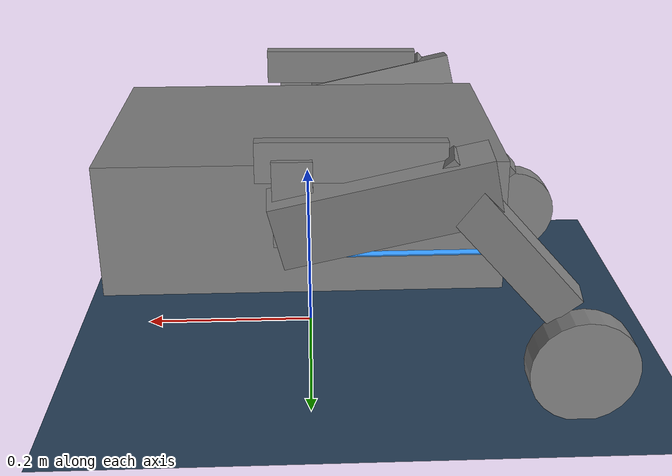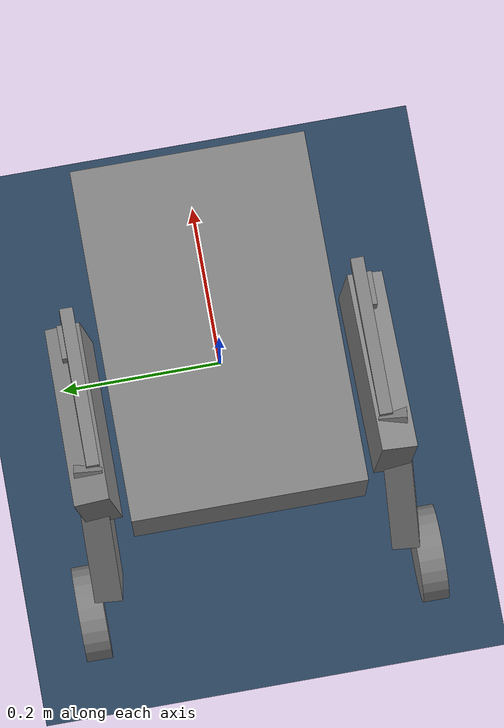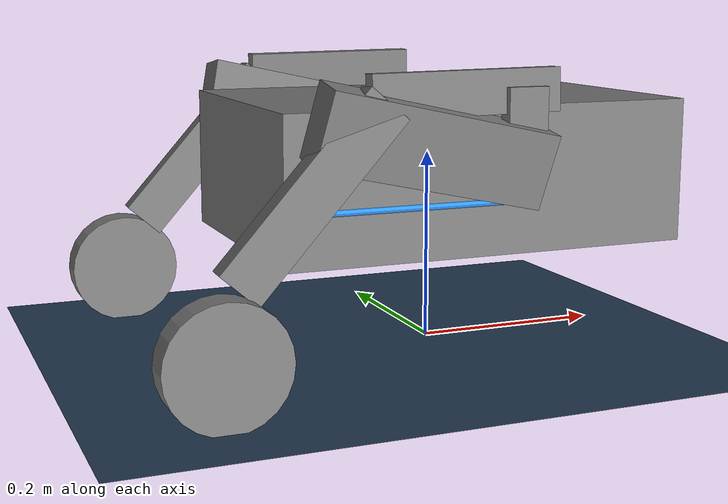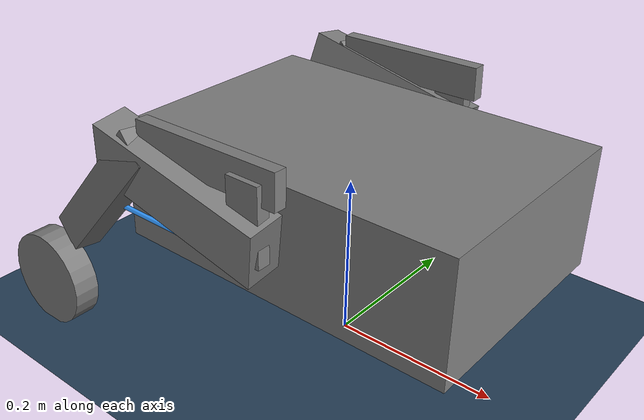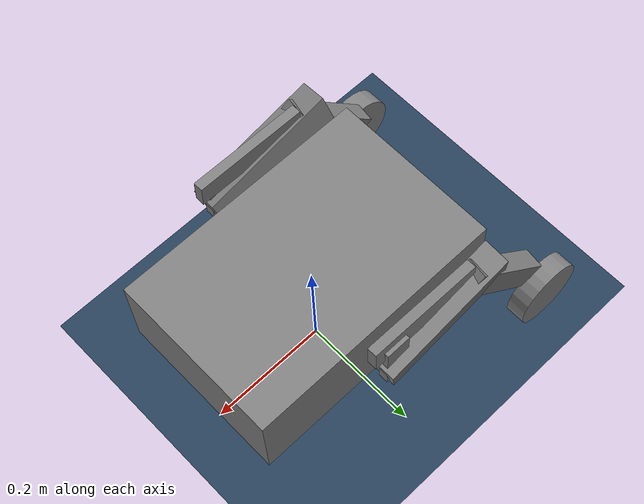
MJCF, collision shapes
<mujoco model="serialleg_closed_chain_v3_train">
  <compiler angle="radian" meshdir="../meshes" autolimits="true" strippath="false" />
  <option timestep="0.002" solver="Newton" cone="pyramidal" />
  <visual>
    <global offwidth="1280" offheight="720" />
  </visual>
  <default>
    <geom solref="0.004 1.5" solimp="0.85 0.99 0.005" />
    <joint damping="0" />
    <equality solref="0.005 1.05" solimp="0.2 0.95 0.002 0.9 6" />
  </default>
  <asset>
    <texture name="grid" type="2d" builtin="checker" width="512" height="512" rgb1=".1 .2 .3" rgb2=".2 .3 .4" />
    <material name="grid" texture="grid" texrepeat="1 1" texuniform="true" reflectance=".2" />
    <mesh name="visual_swbase_base_link_00" file="sw_original_base/base_link_chunk_00.stl" />
    <mesh name="visual_swbase_base_link_01" file="sw_original_base/base_link_chunk_01.stl" />
    <mesh name="visual_swbase_base_link_02" file="sw_original_base/base_link_chunk_02.stl" />
    <mesh name="visual_swbase_base_link_03" file="sw_original_base/base_link_chunk_03.stl" />
    <mesh name="visual_swbase_base_link_04" file="sw_original_base/base_link_chunk_04.stl" />
    <mesh name="visual_swbase_base_link_05" file="sw_original_base/base_link_chunk_05.stl" />
    <mesh name="visual_swbase_base_link_06" file="sw_original_base/base_link_chunk_06.stl" />
    <mesh name="visual_swbase_base_link_07" file="sw_original_base/base_link_chunk_07.stl" />
    <mesh name="visual_swbase_base_link_08" file="sw_original_base/base_link_chunk_08.stl" />
    <mesh name="visual_swbase_base_link_09" file="sw_original_base/base_link_chunk_09.stl" />
    <mesh name="visual_swbase_base_link_10" file="sw_original_base/base_link_chunk_10.stl" />
    <mesh name="visual_swbase_base_link_11" file="sw_original_base/base_link_chunk_11.stl" />
    <mesh name="visual_swbase_base_link_12" file="sw_original_base/base_link_chunk_12.stl" />
    <mesh name="visual_lf_wheel" file="lf_wheel_link.STL" />
    <mesh name="visual_rf_wheel" file="rf_wheel_link.STL" />
    <mesh name="visual_lf_thigh" file="lf_thigh_link.STL" />
    <mesh name="visual_l_drive_bar" file="lf_calf_1_link.STL" />
    <mesh name="visual_l_coupler" file="lf_calf_2_link.STL" />
    <mesh name="visual_l_calf" file="lf_calf_3_link.STL" />
    <mesh name="visual_rf_thigh" file="rf_thigh_link.STL" />
    <mesh name="visual_r_drive_bar" file="rf_calf_1_link.STL" />
    <mesh name="visual_r_coupler" file="rf_calf_2_link.STL" />
    <mesh name="visual_r_calf" file="rf_calf_3_link.STL" />
  </asset>
  <worldbody>
    <geom name="floor" type="plane" size="0 0 .05" material="grid" friction="0.8 0.005 0.0001" contype="2" conaffinity="1" />
    <light name="spotlight" mode="targetbodycom" target="base_link" diffuse=".8 .8 .8" specular="0.3 0.3 0.3" pos="0 -6 4" cutoff="30" />
    <body name="base_link" pos="0 0 0.22">
      <freejoint />
      <inertial pos="-0.01780372 0.01307697 -0.03342401" mass="10.74541262" fullinertia="0.14395729 0.21248062 0.30929562 -0.00229101 0.00807199 -0.00039793" />
      <geom name="base_link_sw_raw_visual_00" type="mesh" mesh="visual_swbase_base_link_00" contype="0" conaffinity="0" group="1" />
      <geom name="base_link_sw_raw_visual_01" type="mesh" mesh="visual_swbase_base_link_01" contype="0" conaffinity="0" group="1" />
      <geom name="base_link_sw_raw_visual_02" type="mesh" mesh="visual_swbase_base_link_02" contype="0" conaffinity="0" group="1" />
      <geom name="base_link_sw_raw_visual_03" type="mesh" mesh="visual_swbase_base_link_03" contype="0" conaffinity="0" group="1" />
      <geom name="base_link_sw_raw_visual_04" type="mesh" mesh="visual_swbase_base_link_04" contype="0" conaffinity="0" group="1" />
      <geom name="base_link_sw_raw_visual_05" type="mesh" mesh="visual_swbase_base_link_05" contype="0" conaffinity="0" group="1" />
      <geom name="base_link_sw_raw_visual_06" type="mesh" mesh="visual_swbase_base_link_06" contype="0" conaffinity="0" group="1" />
      <geom name="base_link_sw_raw_visual_07" type="mesh" mesh="visual_swbase_base_link_07" contype="0" conaffinity="0" group="1" />
      <geom name="base_link_sw_raw_visual_08" type="mesh" mesh="visual_swbase_base_link_08" contype="0" conaffinity="0" group="1" />
      <geom name="base_link_sw_raw_visual_09" type="mesh" mesh="visual_swbase_base_link_09" contype="0" conaffinity="0" group="1" />
      <geom name="base_link_sw_raw_visual_10" type="mesh" mesh="visual_swbase_base_link_10" contype="0" conaffinity="0" group="1" />
      <geom name="base_link_sw_raw_visual_11" type="mesh" mesh="visual_swbase_base_link_11" contype="0" conaffinity="0" group="1" />
      <geom name="base_link_sw_raw_visual_12" type="mesh" mesh="visual_swbase_base_link_12" contype="0" conaffinity="0" group="1" />
      <geom name="base_link_ucol_main" type="box" pos="0.0050578 0 -0.0321384" size="0.215182 0.14325 0.0732178" group="0" contype="1" conaffinity="2" />
      <body name="lf0_Link" pos="0 0.16885 0">
        <joint name="lf0_Joint" type="hinge" axis="0 1 0" armature="0.01" />
        <inertial pos="-0.09968276 0.00404879 0.00282013" mass="0.32242010" fullinertia="0.00013496 0.00177872 0.00170006 0.00007976 0.00009393 -0.00000238" />
        <geom name="lf0_Link_visual" type="mesh" mesh="visual_lf_thigh" contype="0" conaffinity="0" group="1" />
        <site name="lf_thigh_end" pos="-0.17993464 0.0215 0.00489576" size="0.008" rgba="1 0 0 1" />
        <site name="l_spring_p1" pos="0.00705 0.00497702 -0.04678497" group="4" />
        <geom name="lf0_Link_ucol_main" type="box" pos="-0.0791153 0.0104893 0.00967075" size="0.114195 0.0363472 0.0215947" group="0" contype="1" conaffinity="2" quat="0.0816062 -0.0715672 -0.757451 -0.643807" />
        <body name="lf1_Link" pos="-0.12990117 0.0215 0.04639203">
          <joint name="lf1_Joint" type="hinge" pos="-0.05003347 0 -0.04149627" axis="0 1 0" damping="1" armature="0.02" />
          <inertial pos="-0.04177153 -0.00094144 -0.06569666" mass="0.32184046" fullinertia="0.00126318 0.00185755 0.00061944 0.00000296 -0.00076497 0.00001136" />
          <geom name="lf1_Link_visual" type="mesh" mesh="visual_l_calf" contype="0" conaffinity="0" group="1" />
          <site name="lf_calf_closure" pos="-0.05003347 0 -0.04149627" size="0.008" rgba="0 1 0 1" />
          <site name="lf_coupler_closure" pos="0 0 0" size="0.008" rgba="0 0.7 1 1" />
          <site name="l_spring_p2" pos="-0.09034883 -0.01652298 -0.09317700" group="4" />
          <geom name="lf1_Link_ucol_main" type="box" pos="-0.0686723 -0.00751413 -0.0734519" size="0.105536 0.0226941 0.0170808" group="0" contype="1" conaffinity="2" quat="0.266815 0.312912 0.607394 -0.679683" />
          <body name="l_wheel_Link" pos="-0.15699 0.02705 -0.21049">
            <joint name="l_wheel_Joint" type="hinge" axis="0 1 0" armature="0.005" />
            <inertial pos="-0.00007447 -0.00660229 -0.00008940" mass="0.27783378" fullinertia="0.00026503 0.00048080 0.00026516 -0.00000020 0.00000031 -0.00000025" />
            <geom type="mesh" mesh="visual_lf_wheel" pos="0 0 0" name="l_wheel_Link_visual" contype="0" conaffinity="0" group="1" />
            <geom name="l_wheel_Link_collision_0" type="cylinder" size="0.059 0.016" pos="0 -0.0066 0" euler="1.5708 0 0" group="0" contype="1" conaffinity="2" friction="0.8 0.005 0.0001" />
          </body>
        </body>
      </body>
      <body name="l_drive_bar_Link" pos="0 0.16885 0">
        <joint name="l_drive_bar_Joint" type="hinge" axis="0 1 0" armature="0.01" />
        <inertial pos="0.01185501 0.01367042 0.01339557" mass="0.04635322" fullinertia="0.00002217 0.00004090 0.00001928 -0.00000004 -0.00001180 -0.00000005" />
        <geom name="l_drive_bar_Link_visual" type="mesh" mesh="visual_l_drive_bar" contype="0" conaffinity="0" group="1" />
        <geom name="l_drive_bar_Link_ucol_main" type="box" pos="0.0140802 0.0137528 0.0161577" size="0.0455967 0.0203935 0.008" group="0" contype="1" conaffinity="2" quat="0.499004 -0.500697 0.500727 0.499569" />
        <body name="l_coupler_Link" pos="0.04009536 0.00690000 0.04530576">
          <joint name="l_coupler_Joint" type="hinge" axis="0 1 0" damping="1" armature="0.02" />
          <inertial pos="-0.08300337 0.00146519 0.01330427" mass="0.02321892" fullinertia="0.00000249 0.00007107 0.00006893 0.00000032 -0.00000125 -0.00000007" />
          <geom name="l_coupler_Link_visual" type="mesh" mesh="visual_l_coupler" contype="0" conaffinity="0" group="1" />
          <site name="l_coupler_end" pos="-0.16999653 0.0146 0.00108627" size="0.008" rgba="1 0.5 0 1" />
          <geom name="l_coupler_Link_ucol_main" type="box" pos="-0.0847227 0.000859694 0.0123235" size="0.0957434 0.0209158 0.008" group="0" contype="1" conaffinity="2" quat="0.00343031 0.00526854 0.718068 -0.695944" />
        </body>
      </body>
      <body name="rf0_Link" pos="0 -0.16885 0">
        <joint name="rf0_Joint" type="hinge" axis="0 -1 0" armature="0.01" />
        <inertial pos="-0.09968276 -0.00404879 0.00282013" mass="0.32242010" fullinertia="0.00013496 0.00177872 0.00170006 -0.00007976 0.00009393 0.00000238" />
        <geom name="rf0_Link_visual" type="mesh" mesh="visual_rf_thigh" contype="0" conaffinity="0" group="1" />
        <site name="rf_thigh_end" pos="-0.179935 -0.0200 0.004896" size="0.008" rgba="1 0 0 1" />
        <site name="r_spring_p1" pos="0.00705 -0.00497702 -0.04678497" group="4" />
        <geom name="rf0_Link_ucol_main" type="box" pos="-0.0790212 -0.0104735 0.00965626" size="0.114374 0.0364025 0.0215992" group="0" contype="1" conaffinity="2" quat="0.0813693 0.071449 -0.756589 0.644862" />
        <body name="rf1_Link" pos="-0.12990153 -0.0200 0.04639227">
          <joint name="rf1_Joint" type="hinge" pos="-0.05003347 0 -0.04149627" axis="0 -1 0" damping="1" armature="0.02" />
          <inertial pos="-0.04177153 0.00094144 -0.06569666" mass="0.32184046" fullinertia="0.00126318 0.00185755 0.00061944 -0.00000296 -0.00076497 -0.00001136" />
          <geom name="rf1_Link_visual" type="mesh" mesh="visual_r_calf" contype="0" conaffinity="0" group="1" />
          <site name="rf_calf_closure" pos="-0.05003347 0 -0.04149627" size="0.008" rgba="0 1 0 1" />
          <site name="rf_coupler_closure" pos="0 0 0" size="0.008" rgba="0 0.7 1 1" />
          <site name="r_spring_p2" pos="-0.09034883 0.01502298 -0.09317700" group="4" />
          <geom name="rf1_Link_ucol_main" type="box" pos="-0.0683563 0.00435352 -0.0733316" size="0.105135 0.0227139 0.0170572" group="0" contype="1" conaffinity="2" quat="0.266497 0.313796 0.606149 -0.680511" />
          <body name="r_wheel_Link" pos="-0.15699 -0.02705 -0.21049">
            <joint name="r_wheel_Joint" type="hinge" axis="0 -1 0" armature="0.005" />
            <inertial pos="-0.00007447 0.00660229 -0.00008940" mass="0.27783378" fullinertia="0.00026503 0.00048080 0.00026516 0.00000020 0.00000031 0.00000025" />
            <geom type="mesh" mesh="visual_rf_wheel" pos="0 0 0" name="r_wheel_Link_visual" contype="0" conaffinity="0" group="1" />
            <geom name="r_wheel_Link_collision_0" type="cylinder" size="0.059 0.016" pos="0 0.0066 0" euler="1.5708 0 0" group="0" contype="1" conaffinity="2" friction="0.8 0.005 0.0001" />
          </body>
        </body>
      </body>
      <body name="r_drive_bar_Link" pos="0 -0.16885 0">
        <joint name="r_drive_bar_Joint" type="hinge" axis="0 -1 0" armature="0.01" />
        <inertial pos="0.01185501 -0.01367042 0.01339557" mass="0.04635322" fullinertia="0.00002217 0.00004090 0.00001928 0.00000004 -0.00001180 0.00000005" />
        <geom name="r_drive_bar_Link_visual" type="mesh" mesh="visual_r_drive_bar" contype="0" conaffinity="0" group="1" />
        <geom name="r_drive_bar_Link_ucol_main" type="box" pos="0.0140806 -0.0137563 0.0164107" size="0.0458355 0.0203854 0.008" group="0" contype="1" conaffinity="2" quat="0.50136 -0.498405 0.498371 0.501853" />
        <body name="r_coupler_Link" pos="0.040095 -0.0069 0.045306">
          <joint name="r_coupler_Joint" type="hinge" axis="0 -1 0" damping="1" armature="0.02" />
          <inertial pos="-0.08300337 -0.00146519 0.01330427" mass="0.02321892" fullinertia="0.00000249 0.00007107 0.00006893 -0.00000032 -0.00000125 0.00000007" />
          <geom name="r_coupler_Link_visual" type="mesh" mesh="visual_r_coupler" contype="0" conaffinity="0" group="1" />
          <site name="r_coupler_end" pos="-0.16999653 -0.0131 0.00108627" size="0.008" rgba="1 0.5 0 1" />
          <geom name="r_coupler_Link_ucol_main" type="box" pos="-0.0850801 -0.000862684 0.0122261" size="0.0953848 0.0208264 0.008" group="0" contype="1" conaffinity="2" quat="0.00343881 -0.00524957 0.718104 0.695908" />
        </body>
      </body>
    </body>
  </worldbody>
  <equality>
    <connect name="l_coupler_to_lf_calf" site1="l_coupler_end" site2="lf_coupler_closure" />
    <connect name="r_coupler_to_rf_calf" site1="r_coupler_end" site2="rf_coupler_closure" />
  </equality>
  <tendon>
    <fixed name="l_active_rod_angle" limited="true" range="0 1.7" solreflimit="0.001 1" solimplimit="0.99 0.999 0.00001 0.5 2">
      <joint joint="lf0_Joint" coef="1" />
      <joint joint="l_drive_bar_Joint" coef="-1" />
    </fixed>
    <fixed name="r_active_rod_angle" limited="true" range="0 1.7" solreflimit="0.001 1" solimplimit="0.99 0.999 0.00001 0.5 2">
      <joint joint="r_drive_bar_Joint" coef="1" />
      <joint joint="rf0_Joint" coef="-1" />
    </fixed>
    <spatial name="l_knee_spring" width="0.003" rgba="0.2 0.6 1 1">
      <site site="l_spring_p1" />
      <site site="l_spring_p2" />
    </spatial>
    <spatial name="r_knee_spring" width="0.003" rgba="0.2 0.6 1 1">
      <site site="r_spring_p1" />
      <site site="r_spring_p2" />
    </spatial>
  </tendon>
  <actuator>
    <general name="l_knee_gas_spring" tendon="l_knee_spring" dyntype="none" gaintype="fixed" biastype="affine" gainprm="0" biasprm="300 0 0" />
    <general name="r_knee_gas_spring" tendon="r_knee_spring" dyntype="none" gaintype="fixed" biastype="affine" gainprm="0" biasprm="300 0 0" />
  </actuator>
  <keyframe>
    <key name="standing" qpos="0 0 0.230340071 1 0 0 0 -0.2275 -1.163001511 0 -1.4475 1.296413806 0.2275 1.163000657 0 1.4475 -1.296416824" />
  </keyframe>
</mujoco>
